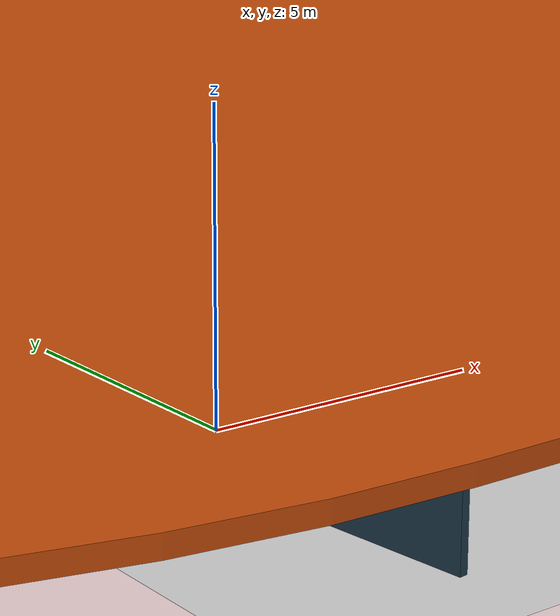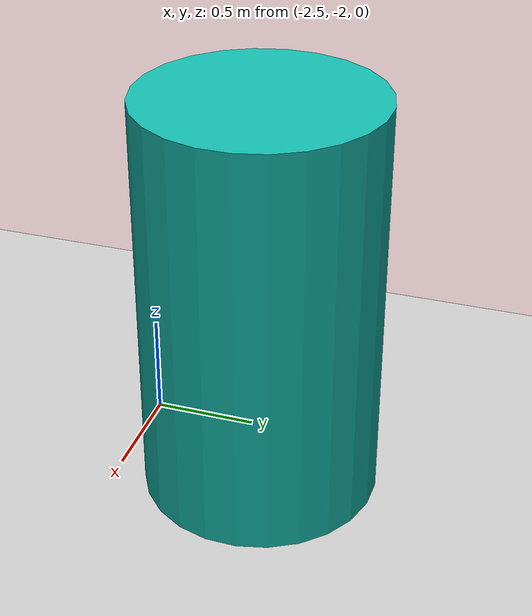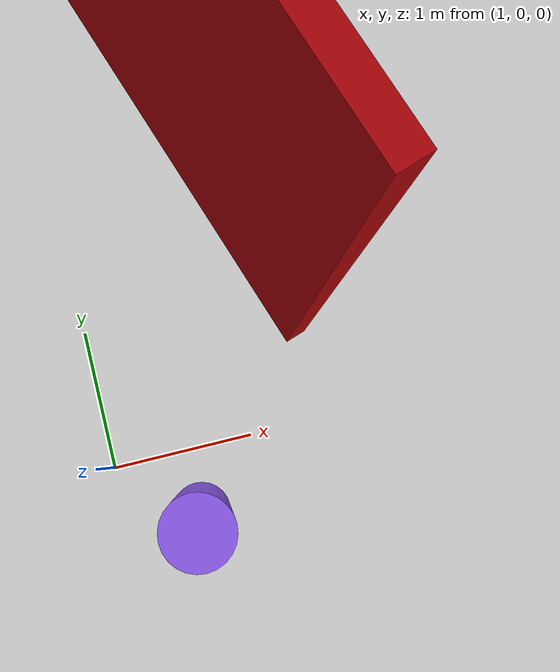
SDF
<sdf version="1.6">
 <world name="default">
  <atmosphere type="adiabatic"/>
  <wind><linear_velocity>0 0 0</linear_velocity></wind>
  <gravity>0 0 -9.8</gravity>
  <model name="static_cylinder">
   <pose>1.52771 -0.449231 0.834382 0 -0 0.00497516</pose>
   <static>1</static>
   <allow_auto_disable>0</allow_auto_disable>
   <link name="link">
    <collision name="collision">
     <geometry>
      <cylinder><radius>0.20926871266692304</radius><length>1.6687639305200688</length></cylinder>
     </geometry>
     <max_contacts>20</max_contacts>
    </collision>
    <visual name="visual">
     <geometry>
      <cylinder><radius>0.20926871266692304</radius><length>1.6687639305200688</length></cylinder>
     </geometry>
     <material>
      <ambient>0.529412 0.337255 0.894118 1</ambient>
      <diffuse>0.5294117647058824 0.33725490196078434 0.8941176470588236 1</diffuse>
     </material>
     <transparency>0.0</transparency>
    </visual>
   </link>
  </model>
  <model name="dyn_box">
   <pose>-0.790956 -5.0746 2.177 0 -0 0.107767</pose>
   <static>0</static>
   <allow_auto_disable>0</allow_auto_disable>
   <link name="link">
    <collision name="collision">
     <geometry><box><size>0.131666 2.30936 4.354</size></box></geometry>
     <max_contacts>20</max_contacts>
    </collision>
    <visual name="visual">
     <geometry><box><size>0.131666 2.30936 4.354</size></box></geometry>
     <material>
      <ambient>0.121569 0.231373 0.301961 1</ambient>
      <diffuse>0.12156862745098039 0.23137254901960785 0.30196078431372547 1</diffuse>
     </material>
     <transparency>0.0</transparency>
    </visual>
    <inertial>
     <inertia>
      <ixx>0.4030946966783976</ixx>
      <iyy>0.31487995439597655</iyy>
      <izz>0.08879010894410057</izz>
      <ixy>0.0</ixy>
      <ixz>0.0</ixz>
      <iyz>0.0</iyz>
     </inertia>
     <mass>0.19913691783492804</mass>
    </inertial>
   </link>
  </model>
  <model name="static_cylinder_1">
   <pose>-2.14646 -1.33527 0.969666 0 0 -1.72347</pose>
   <static>1</static>
   <allow_auto_disable>0</allow_auto_disable>
   <link name="link">
    <collision name="collision">
     <geometry>
      <cylinder><radius>0.5575298443762391</radius><length>1.9393311524717032</length></cylinder>
     </geometry>
     <max_contacts>20</max_contacts>
    </collision>
    <visual name="visual">
     <geometry>
      <cylinder><radius>0.5575298443762391</radius><length>1.9393311524717032</length></cylinder>
     </geometry>
     <material>
      <ambient>0.0745098 0.733333 0.686275 1</ambient>
      <diffuse>0.07450980392156863 0.7333333333333333 0.6862745098039216 1</diffuse>
     </material>
     <transparency>0.0</transparency>
    </visual>
   </link>
  </model>
  <model name="dyn_box_1">
   <pose>1.96452 2.20851 1.8123 0 -0 1.88985</pose>
   <static>0</static>
   <allow_auto_disable>0</allow_auto_disable>
   <link name="link">
    <collision name="collision">
     <geometry><box><size>3.35596 0.149294 3.6246</size></box></geometry>
     <max_contacts>20</max_contacts>
    </collision>
    <visual name="visual">
     <geometry><box><size>3.35596 0.149294 3.6246</size></box></geometry>
     <material>
      <ambient>0.662745 0.0117647 0.0313725 1</ambient>
      <diffuse>0.6627450980392157 0.011764705882352941 0.03137254901960784 1</diffuse>
     </material>
     <transparency>0.0</transparency>
    </visual>
    <inertial>
     <inertia>
      <ixx>0.7728283524648114</ixx>
      <iyy>1.4329165147205163</iyy>
      <izz>0.6627059856216234</izz>
      <ixy>0.0</ixy>
      <ixz>0.0</ixz>
      <iyz>0.0</iyz>
     </inertia>
     <mass>0.7047073604511654</mass>
    </inertial>
   </link>
  </model>
  <include>
   <uri>model://ceiling_3</uri>
   <pose>0 0 6 0 -0 0</pose>
   <name>ceiling_3</name>
   <static>1</static>
  </include>
  <include><uri>model://ground_plane</uri><name>ground_plane</name><static>1</static></include>
  <include><uri>model://sun</uri></include>
  <physics name="default_physics" default="0" type="ode">
   <gravity>0 0 -9.8066</gravity>
   <ode>
    <solver>
     <type>quick</type>
     <iters>10</iters>
     <sor>1.3</sor>
     <use_dynamic_moi_rescaling>0</use_dynamic_moi_rescaling>
    </solver>
    <constraints>
     <cfm>0</cfm>
     <erp>0.2</erp>
     <contact_max_correcting_vel>100</contact_max_correcting_vel>
     <contact_surface_layer>0.001</contact_surface_layer>
    </constraints>
   </ode>
   <max_step_size>0.004</max_step_size>
   <real_time_factor>1</real_time_factor>
   <real_time_update_rate>250</real_time_update_rate>
   <magnetic_field>6.0e-6 2.3e-5 -4.2e-5</magnetic_field>
  </physics>
  <scene>
   <ambient>0.8 0.8 0.8 1</ambient>
   <background>0.8 0.9 1 1</background>
   <shadows>false</shadows>
   <grid>false</grid>
   <origin_visual>false</origin_visual>
  </scene>
 </world>
</sdf>

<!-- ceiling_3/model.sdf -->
<sdf version="1.6">
  <model name="ceiling_3">
    <pose frame="">0 0 6 0 -0 0</pose>
    <static>1</static>
    <self_collide>0</self_collide>
    <allow_auto_disable>0</allow_auto_disable>
    <link name="mesh">
      <kinematic>0</kinematic>
      <gravity>1</gravity>
      <self_collide>0</self_collide>
      <collision name="collision">
        <geometry>
          <mesh>
            <uri>model://ceiling_3/meshes/pAPyqPrUWV.stl</uri>
            <scale>1 1 1</scale>
          </mesh>
        </geometry>
        <pose frame="">-2.0783 -6.32172 -0.075 0 -0 0</pose>
        <max_contacts>20</max_contacts>
      </collision>
      <visual name="visual">
        <geometry>
          <mesh>
            <uri>model://ceiling_3/meshes/oiZjDsUXmE.stl</uri>
            <scale>1 1 1</scale>
          </mesh>
        </geometry>
        <material>
          <ambient>0.756863 0.290196 0.0352941 1</ambient>
          <diffuse>0.7568627450980392 0.2901960784313726 0.03529411764705882 1</diffuse>
        </material>
        <pose frame="">-2.0783 -6.32172 -0.075 0 -0 0</pose>
        <cast_shadows>1</cast_shadows>
        <transparency>0.0</transparency>
      </visual>
      <pose frame="">0 0 0 0 -0 0</pose>
    </link>
  </model>
</sdf>
